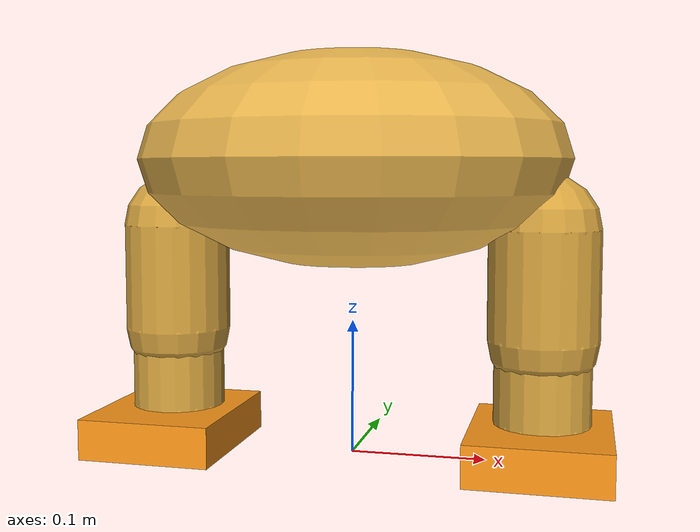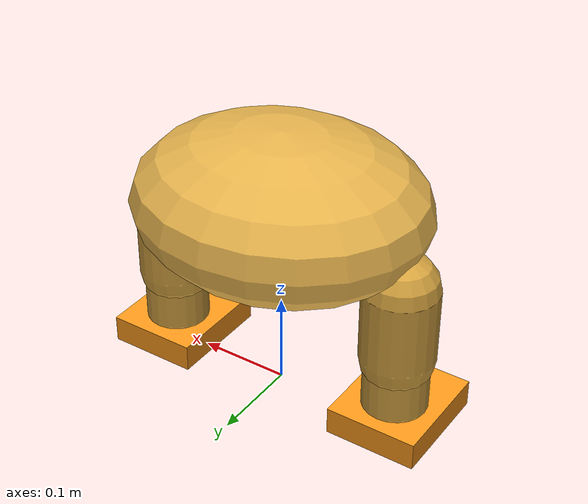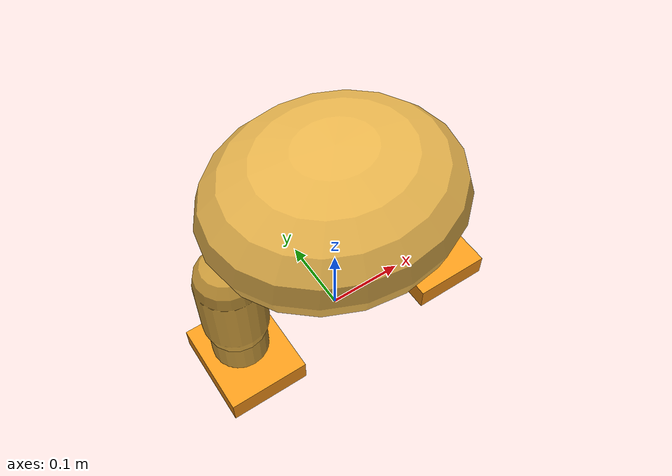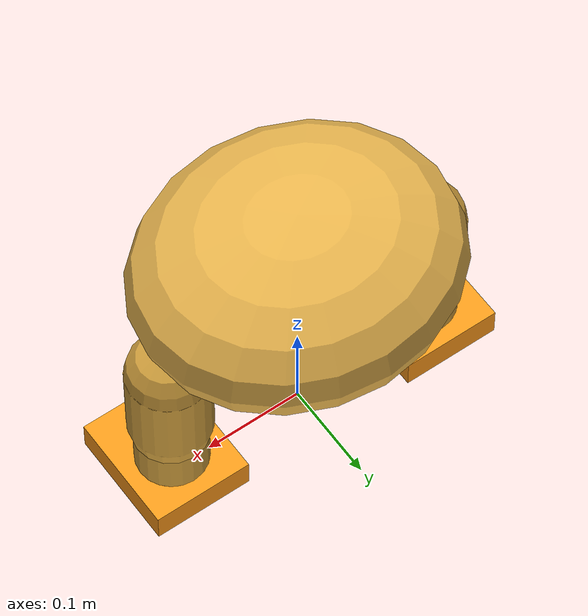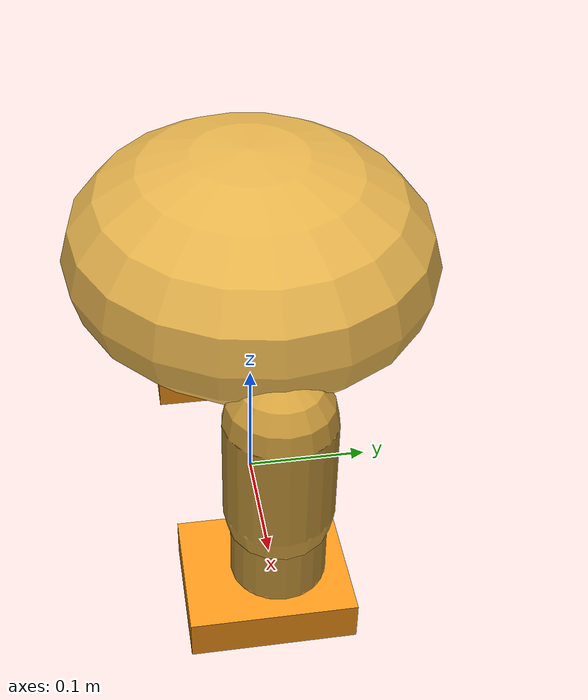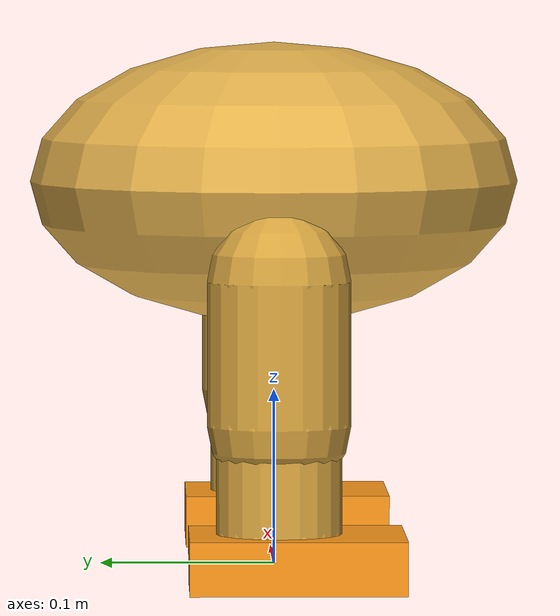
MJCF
<?xml version='1.0' encoding='utf-8'?>
<mujoco model="DuckBiped">
  <compiler angle="radian" inertiafromgeom="true" />

  <default>
    <joint limited="true" damping="2.0" armature="0.01" />
    <geom contype="1" conaffinity="1" condim="3" density="1000"
          friction="0.8 0.1 0.1" />
    <position ctrlrange="-1 1" kp="40" />
  </default>

  <worldbody>
    <body name="base" pos="0 0 0.22">
      <freejoint name="root" />
      <!-- Wide, flat, heavy egg body (duck proportions) -->
      <geom name="torso" type="ellipsoid" size="0.16 0.14 0.08"
            rgba="0.9 0.7 0.3 1.0" mass="10.0" />

      <!-- IMU site for sensors -->
      <site name="imu" pos="0 0 0" />

      <!-- Forward-facing camera (looks in -Y = forward) -->
      <camera name="camera_1_cam" fovy="90.0"
              pos="0 -0.15 0.04" euler="-1.5707963 0 3.14159265" />

      <!-- === LEFT LEG === -->
      <body name="left_upper_leg" pos="-0.14 0 -0.05">
        <joint name="left_hip_abd" type="hinge" axis="0 1 0"
               pos="0 0 0" range="-0.4 0.4" damping="1.0" />
        <joint name="left_hip" type="hinge" axis="1 0 0"
               pos="0 0 0" range="-1.0 0.5" damping="3.0" />
        <geom name="left_upper_leg" type="capsule" fromto="0 0 0 0 0 -0.08"
              size="0.04" rgba="0.85 0.65 0.25 1.0" />

        <body name="left_lower_leg" pos="0 0 -0.08">
          <joint name="left_knee" type="hinge" axis="1 0 0"
                 pos="0 0 0" range="0 2.1" damping="6.0" />
          <geom name="left_lower_leg" type="capsule" fromto="0 0 0 0 0 -0.06"
                size="0.035" rgba="0.85 0.65 0.25 1.0" />

          <body name="left_foot" pos="0 0 -0.06">
            <joint name="left_ankle" type="hinge" axis="1 0 0"
                   pos="0 0 0" range="-0.4 0.4" damping="1.5" />
            <!-- Box foot: flat bottom for area contact, provides lateral stability -->
            <geom name="left_foot" type="box"
                  size="0.05 0.06 0.015"
                  pos="0 -0.01 -0.015"
                  rgba="1.0 0.6 0.1 1.0"
                  friction="1.2 0.3 0.1" mass="0.4" />
          </body>
        </body>
      </body>

      <!-- === RIGHT LEG === -->
      <body name="right_upper_leg" pos="0.14 0 -0.05">
        <joint name="right_hip_abd" type="hinge" axis="0 1 0"
               pos="0 0 0" range="-0.4 0.4" damping="1.0" />
        <joint name="right_hip" type="hinge" axis="1 0 0"
               pos="0 0 0" range="-1.0 0.5" damping="3.0" />
        <geom name="right_upper_leg" type="capsule" fromto="0 0 0 0 0 -0.08"
              size="0.04" rgba="0.85 0.65 0.25 1.0" />

        <body name="right_lower_leg" pos="0 0 -0.08">
          <joint name="right_knee" type="hinge" axis="1 0 0"
                 pos="0 0 0" range="0 2.1" damping="6.0" />
          <geom name="right_lower_leg" type="capsule" fromto="0 0 0 0 0 -0.06"
                size="0.035" rgba="0.85 0.65 0.25 1.0" />

          <body name="right_foot" pos="0 0 -0.06">
            <joint name="right_ankle" type="hinge" axis="1 0 0"
                   pos="0 0 0" range="-0.4 0.4" damping="1.5" />
            <!-- Box foot: flat bottom for area contact, provides lateral stability -->
            <geom name="right_foot" type="box"
                  size="0.05 0.06 0.015"
                  pos="0 -0.01 -0.015"
                  rgba="1.0 0.6 0.1 1.0"
                  friction="1.2 0.3 0.1" mass="0.4" />
          </body>
        </body>
      </body>
    </body>
  </worldbody>

  <contact>
    <exclude body1="base" body2="left_upper_leg" />
    <exclude body1="base" body2="right_upper_leg" />
    <exclude body1="left_upper_leg" body2="left_lower_leg" />
    <exclude body1="left_lower_leg" body2="left_foot" />
    <exclude body1="right_upper_leg" body2="right_lower_leg" />
    <exclude body1="right_lower_leg" body2="right_foot" />
    <exclude body1="left_upper_leg" body2="right_upper_leg" />
  </contact>

  <actuator>
    <!-- Position actuators: ctrl=0 holds joints at default angle (standing)
         kp=40 default, reduced from 100 to match smaller/lighter duck body -->
    <position name="left_hip_abd_motor" joint="left_hip_abd" kp="25" />
    <position name="left_hip_motor" joint="left_hip" />
    <position name="left_knee_motor" joint="left_knee" ctrlrange="0 2.1" />
    <position name="left_ankle_motor" joint="left_ankle" kp="30" />
    <position name="right_hip_abd_motor" joint="right_hip_abd" kp="25" />
    <position name="right_hip_motor" joint="right_hip" />
    <position name="right_knee_motor" joint="right_knee" ctrlrange="0 2.1" />
    <position name="right_ankle_motor" joint="right_ankle" kp="30" />
  </actuator>

  <sensor>
    <jointpos name="left_hip_abd_pos" joint="left_hip_abd" />
    <jointpos name="left_hip_pos" joint="left_hip" />
    <jointpos name="left_knee_pos" joint="left_knee" />
    <jointpos name="left_ankle_pos" joint="left_ankle" />
    <jointpos name="right_hip_abd_pos" joint="right_hip_abd" />
    <jointpos name="right_hip_pos" joint="right_hip" />
    <jointpos name="right_knee_pos" joint="right_knee" />
    <jointpos name="right_ankle_pos" joint="right_ankle" />
    <jointvel name="left_hip_abd_vel" joint="left_hip_abd" />
    <jointvel name="left_hip_vel" joint="left_hip" />
    <jointvel name="left_knee_vel" joint="left_knee" />
    <jointvel name="left_ankle_vel" joint="left_ankle" />
    <jointvel name="right_hip_abd_vel" joint="right_hip_abd" />
    <jointvel name="right_hip_vel" joint="right_hip" />
    <jointvel name="right_knee_vel" joint="right_knee" />
    <jointvel name="right_ankle_vel" joint="right_ankle" />
    <gyro name="torso_gyro" site="imu" />
    <accelerometer name="torso_accel" site="imu" />
  </sensor>
</mujoco>
